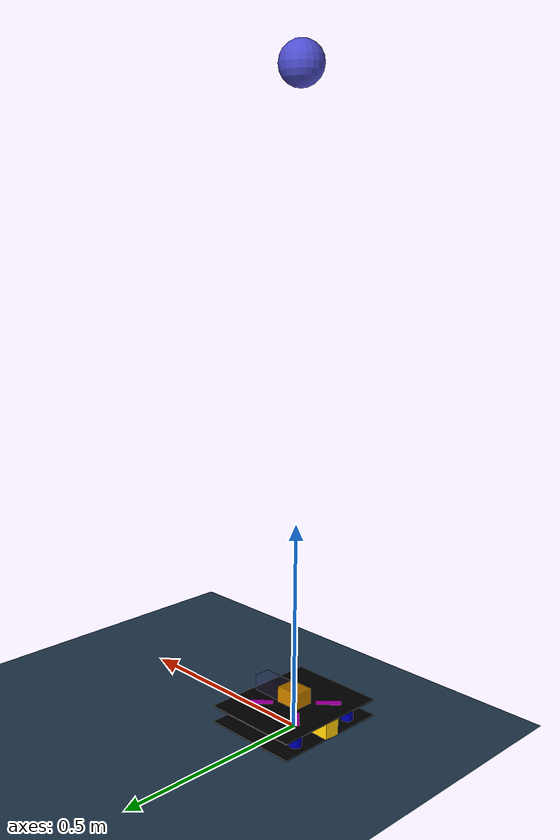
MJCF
<mujoco model="quadrotor0">
        <include file="./common/visual.xml"/>
        <include file="./common/skybox.xml"/>
        <include file="./common/materials.xml"/>
        <compiler inertiafromgeom="true" coordinate="local"/>
        <option	timestep="0.001" gravity="0 0 -9.81" density="1.225" viscosity="1e-5" wind="0 0 0"/>
        <worldbody>
                <geom name="floor" pos="0 0 0" size="5 5 .2" type="plane" material="grid"/>
                <body name="quadrotor" pos="0.0 0.0 0.02" >

                        <!-- CORE 核心 -->
                        <geom name="core" type="box" pos="0 0 0.06" quat = "1. 0. 0. 0" size="0.03 0.025 0.02"  rgba="1.0 0.647 0.0 0.8" mass = ".1"/>

                        <!-- RACKS 机架 -->

                        <!-- RACKS 机架 -->
                        <geom name="rack_up" type="box" pos="0.0 0.0 0.041" size="0.12 0.15 0.001"  quat = "1.0 0.0 0.0 0.0" rgba="0.0 0.0 0.0 1.5" mass = "0.1"/>
                        <geom name="rack_down" type="box" pos="0.0 0.0 0.001" size="0.12 0.15 0.001"  quat = "1.0 0.0 0.0 0.0" rgba="0.0 0.0 0.0 1.5" mass = "0.1"/>

                        <!-- BATTERY -->
                        <geom name="battery" type="box" pos="-0.06 0.0 0.02" size="0.06 0.02 0.02"  quat = "1.0 0.0 0.0 0.0" rgba="1.0 0.8 0.0 1.0" mass = "0.26"/>

                        <!-- NX -->
                        <geom name="nx" type="box" pos="0.07 0.0 0.06" size="0.04 0.02 0.02"  quat = "1.0 0.0 0.0 0.0" rgba="0.28 0.239 0.545 0.2" mass = "0.18"/>

                        <!-- ESC -->
                        <geom name="ESC1" type="box" pos=".057 0.057 0.04" size="0.03 0.01 0.0025"  quat = ".924 0.0 0.0 0.383" rgba="1.0 0.0 1.0 0.8" mass = "0.016"/>
                        <geom name="ESC2" type="box" pos=".057 -0.057 0.04" size="0.03 0.01 0.0025"  quat = ".383 0.0 0.0 0.924" rgba="1.0 0.0 1.0 0.8" mass = "0.016"/>
                        <geom name="ESC3" type="box" pos="-0.057 -0.057 0.04" size="0.03 0.01 0.0025"  quat = "-.383 0.0 0.0 0.924" rgba="1.0 0.0 1.0 0.8" mass = "0.016"/>
                        <geom name="ESC4" type="box" pos="-.057 0.057 0.04" size="0.03 0.01 0.0025"  quat = ".924 0.0 0.0 -0.383" rgba="1.0 0.0 1.0 0.8" mass = "0.016"/>

                        <!-- Thruster -->
                        <geom name="thruster1" type="cylinder" pos=" 0.0883  0.0883  0.01" size="0.015 0.01"  quat = "1.0 0.0 0.0 0." rgba="0.0 0.0 0.8 0.8" mass = "0.04"/>
                        <geom name="thruster2" type="cylinder" pos="-0.0883  -0.0883  0.01" size="0.015 0.01"  quat = "1.0 0.0 0.0 0." rgba="0.0 0.0 0.8 0.8" mass = "0.04"/>
                        <geom name="thruster3" type="cylinder" pos="-0.0883  0.0883  0.01" size="0.015 0.01"  quat = "1.0 0.0 0.0 0." rgba="0.0 0.0 0.8 0.8" mass = "0.04"/>
                        <geom name="thruster4" type="cylinder" pos=" 0.0883  -0.0883  0.01" size="0.015 0.01"  quat = "1.0 0.0 0.0 0." rgba="0.0 0.0 0.8 0.8" mass = "0.04"/>

                        <!-- Motor sites to attach motor actuators -->
                        <site name="motor1" type="cylinder" pos=" 0.0883  0.0883  0.01"  size="0.015 0.01"  quat = "1.0 0.0 0.0 0." rgba="0.0 0.0 0.8 0.8"/>
                        <site name="motor2" type="cylinder" pos="-0.0883  -0.0883  0.01"  size="0.015 0.01"  quat = "1.0 0.0 0.0 0." rgba="0.0 0.0 0.8 0.8"/>
                        <site name="motor3" type="cylinder" pos="-0.0883  0.0883  0.01"  size="0.015 0.01"  quat = "1.0 0.0 0.0 0." rgba="0.0 0.0 0.8 0.8"/>
                        <site name="motor4" type="cylinder" pos=" 0.0883  -0.0883  0.01"  size="0.015 0.01"  quat = "1.0 0.0 0.0 0." rgba="0.0 0.0 0.8 0.8"/>
                        <site name="motor_wind_x" type="box" pos="0.0 0.0 0.03"  size="0.01 0.01 0.01"  quat = "1.0 0.0 0.0 0." rgba="0.3 0.8 0.3 1"/>
                        <site name="motor_wind_y" type="box" pos="0.0 0.0 0.03"  size="0.01 0.01 0.01"  quat = "1.0 0.0 0.0 0." rgba="0.3 0.8 0.3 1"/>
                        <site name="motor_wind_z" type="box" pos="0.0 0.0 0.03"  size="0.01 0.01 0.01"  quat = "1.0 0.0 0.0 0." rgba="0.3 0.8 0.3 1"/>

                        <joint name="root"   type="free" damping="0" armature="0" pos="0 0 0.03" />
                </body>

                <body name="goal_point" pos="0 0 1.5">
                        <!-- goal point -->
                        <site name="goal_point" type="sphere" pos="0 0 0" size="0.05" rgba="0.3 0.3 0.8 1" />
                </body>
        </worldbody>
        <actuator>
                <motor ctrllimited="true" ctrlrange="0.0 7.0" gear="0  0. 1. 0. 0.  0.016" site="motor1"/>
                <motor ctrllimited="true" ctrlrange="0.0 7.0" gear="0  0. 1. 0. 0.  0.016" site="motor2"/>
                <motor ctrllimited="true" ctrlrange="0.0 7.0" gear="0  0. 1. 0. 0.  -0.016" site="motor3"/>
                <motor ctrllimited="true" ctrlrange="0.0 7.0" gear="0  0. 1. 0. 0.  -0.016" site="motor4"/>
                <motor ctrllimited="true" ctrlrange="-1.5 1.5" gear="1  0. 0. 0. 0.  0." site="motor_wind_x"/>
                <motor ctrllimited="true" ctrlrange="-1.5 1.5" gear="0. 1. 0. 0. 0.  0." site="motor_wind_y"/>
                <motor ctrllimited="true" ctrlrange="-1.5 1.5" gear="0. 0. 1. 0. 0.  0." site="motor_wind_z"/>
        </actuator>
</mujoco>

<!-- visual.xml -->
<mujoco>
    <visual>
      <headlight ambient=".4 .4 .4" diffuse=".8 .8 .8" specular="0.1 0.1 0.1"/>
      <map znear=".01"/>
      <quality shadowsize="2048"/>
    </visual>
  </mujoco>

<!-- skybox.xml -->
<mujoco>
    <asset>
        <texture name="skybox" type="skybox" builtin="gradient" rgb1="1 1 1" rgb2="1 1 1"
                 width="800" height="800"/>
    </asset>
</mujoco>

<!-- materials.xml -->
<!--
Common textures, colors and materials to be used throughout this suite. Some
materials such as xxx_highlight are activated on occurence of certain events,
for example receiving a positive reward.
-->
<mujoco>
    <asset>
      <texture name="grid" type="2d" builtin="checker" rgb1=".1 .2 .3" rgb2=".2 .3 .4" width="300" height="300" mark="edge" markrgb=".2 .3 .4"/>
      <material name="grid" texture="grid" texrepeat="1 1" texuniform="true" reflectance=".2"/>
      <material name="self" rgba=".7 .5 .3 1"/>
      <material name="self_default" rgba=".7 .5 .3 1"/>
      <material name="self_highlight" rgba="0 .5 .3 1"/>
      <material name="effector" rgba=".7 .4 .2 1"/>
      <material name="effector_default" rgba=".7 .4 .2 1"/>
      <material name="effector_highlight" rgba="0 .5 .3 1"/>
      <material name="decoration" rgba=".3 .5 .7 1"/>
      <material name="eye" rgba="0 .2 1 1"/>
      <material name="target" rgba=".6 .3 .3 1"/>
      <material name="target_default" rgba=".6 .3 .3 1"/>
      <material name="target_highlight" rgba=".6 .3 .3 .4"/>
      <material name="site" rgba=".5 .5 .5 .3"/>
    </asset>
  </mujoco>
